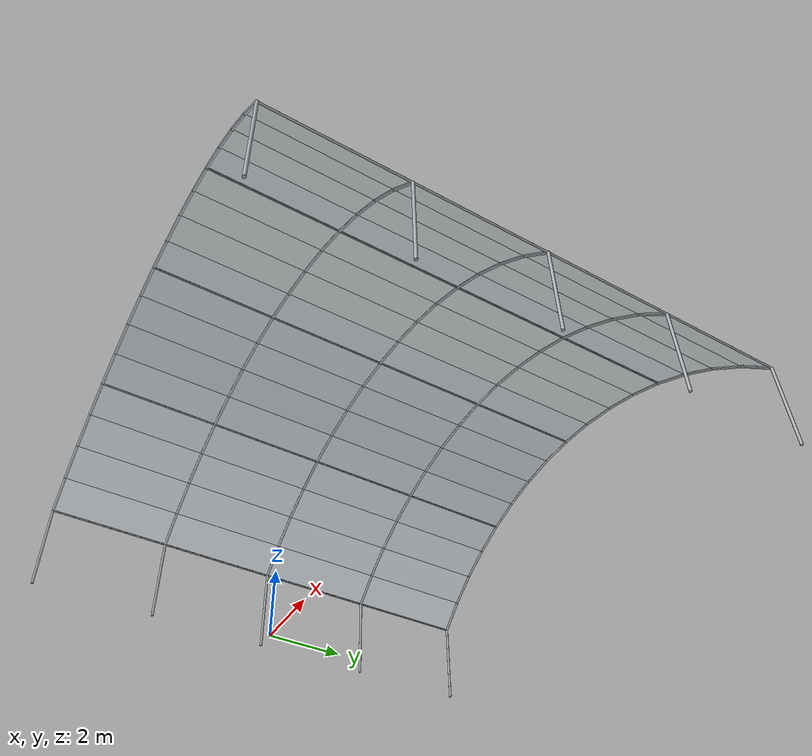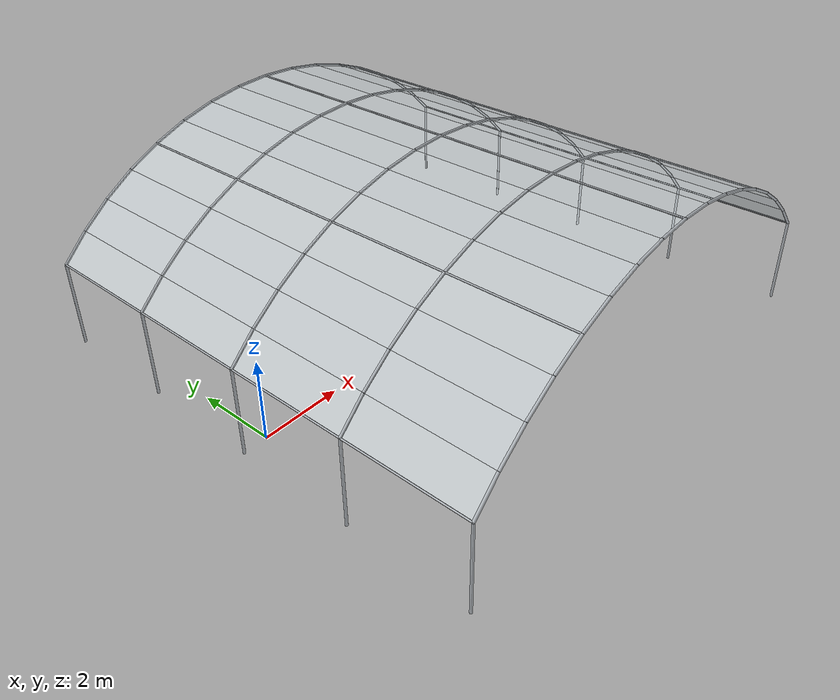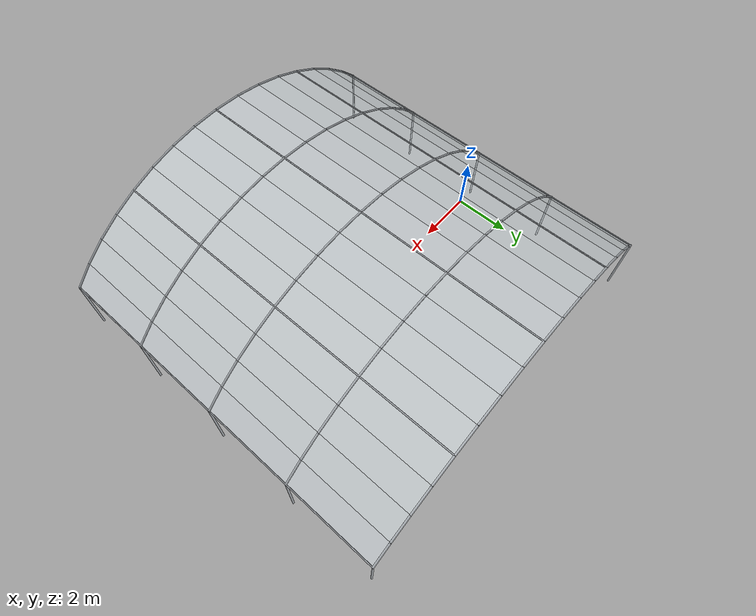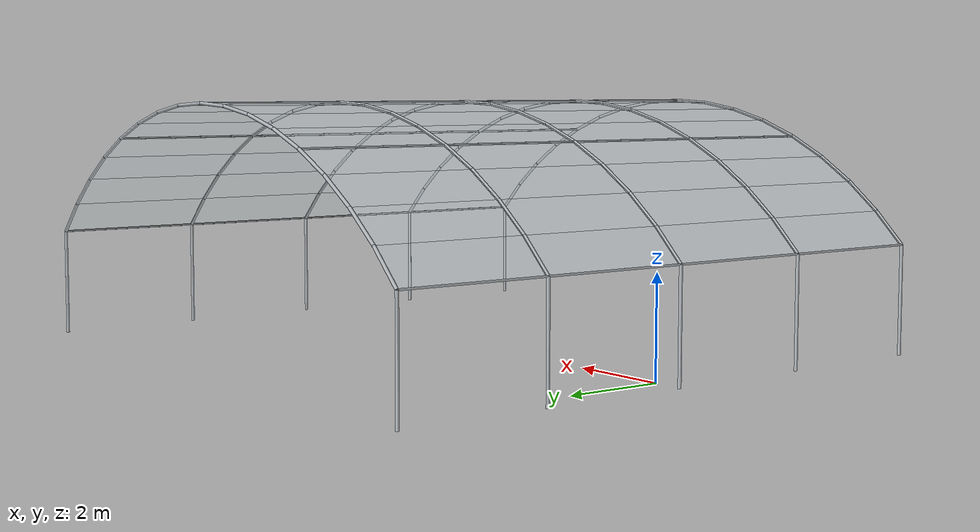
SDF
<?xml version="1.0"?>
<sdf version="1.6">
  <model name="polytunnel">
    <static>true</static>
    <link name="frame">
      <visual name="hoop_0">
        <pose>-0.6000 -6.0000 1.1000 0 0.00000 0</pose>
        <geometry><cylinder><radius>0.0320</radius><length>2.2000</length></cylinder></geometry>
        <material><ambient>0.42 0.44 0.46 1</ambient><diffuse>0.68 0.70 0.72 1</diffuse></material>
      </visual>
      <collision name="hoop_0_c">
        <pose>-0.6000 -6.0000 1.1000 0 0.00000 0</pose>
        <geometry><cylinder><radius>0.0320</radius><length>2.2000</length></cylinder></geometry>
      </collision>
      <visual name="hoop_1">
        <pose>-0.2826 -6.0000 2.5134 0 0.79173 0</pose>
        <geometry><cylinder><radius>0.0320</radius><length>0.8921</length></cylinder></geometry>
        <material><ambient>0.42 0.44 0.46 1</ambient><diffuse>0.68 0.70 0.72 1</diffuse></material>
      </visual>
      <collision name="hoop_1_c">
        <pose>-0.2826 -6.0000 2.5134 0 0.79173 0</pose>
        <geometry><cylinder><radius>0.0320</radius><length>0.8921</length></cylinder></geometry>
      </collision>
      <visual name="hoop_2">
        <pose>0.3830 -6.0000 3.1057 0 0.89561 0</pose>
        <geometry><cylinder><radius>0.0320</radius><length>0.8921</length></cylinder></geometry>
        <material><ambient>0.42 0.44 0.46 1</ambient><diffuse>0.68 0.70 0.72 1</diffuse></material>
      </visual>
      <collision name="hoop_2_c">
        <pose>0.3830 -6.0000 3.1057 0 0.89561 0</pose>
        <geometry><cylinder><radius>0.0320</radius><length>0.8921</length></cylinder></geometry>
      </collision>
      <visual name="hoop_3">
        <pose>1.1065 -6.0000 3.6257 0 0.99948 0</pose>
        <geometry><cylinder><radius>0.0320</radius><length>0.8921</length></cylinder></geometry>
        <material><ambient>0.42 0.44 0.46 1</ambient><diffuse>0.68 0.70 0.72 1</diffuse></material>
      </visual>
      <collision name="hoop_3_c">
        <pose>1.1065 -6.0000 3.6257 0 0.99948 0</pose>
        <geometry><cylinder><radius>0.0320</radius><length>0.8921</length></cylinder></geometry>
      </collision>
      <visual name="hoop_4">
        <pose>1.8799 -6.0000 4.0679 0 1.10336 0</pose>
        <geometry><cylinder><radius>0.0320</radius><length>0.8921</length></cylinder></geometry>
        <material><ambient>0.42 0.44 0.46 1</ambient><diffuse>0.68 0.70 0.72 1</diffuse></material>
      </visual>
      <collision name="hoop_4_c">
        <pose>1.8799 -6.0000 4.0679 0 1.10336 0</pose>
        <geometry><cylinder><radius>0.0320</radius><length>0.8921</length></cylinder></geometry>
      </collision>
      <visual name="hoop_5">
        <pose>2.6951 -6.0000 4.4275 0 1.20723 0</pose>
        <geometry><cylinder><radius>0.0320</radius><length>0.8921</length></cylinder></geometry>
        <material><ambient>0.42 0.44 0.46 1</ambient><diffuse>0.68 0.70 0.72 1</diffuse></material>
      </visual>
      <collision name="hoop_5_c">
        <pose>2.6951 -6.0000 4.4275 0 1.20723 0</pose>
        <geometry><cylinder><radius>0.0320</radius><length>0.8921</length></cylinder></geometry>
      </collision>
      <visual name="hoop_6">
        <pose>3.5431 -6.0000 4.7007 0 1.31111 0</pose>
        <geometry><cylinder><radius>0.0320</radius><length>0.8921</length></cylinder></geometry>
        <material><ambient>0.42 0.44 0.46 1</ambient><diffuse>0.68 0.70 0.72 1</diffuse></material>
      </visual>
      <collision name="hoop_6_c">
        <pose>3.5431 -6.0000 4.7007 0 1.31111 0</pose>
        <geometry><cylinder><radius>0.0320</radius><length>0.8921</length></cylinder></geometry>
      </collision>
      <visual name="hoop_7">
        <pose>4.4149 -6.0000 4.8845 0 1.41498 0</pose>
        <geometry><cylinder><radius>0.0320</radius><length>0.8921</length></cylinder></geometry>
        <material><ambient>0.42 0.44 0.46 1</ambient><diffuse>0.68 0.70 0.72 1</diffuse></material>
      </visual>
      <collision name="hoop_7_c">
        <pose>4.4149 -6.0000 4.8845 0 1.41498 0</pose>
        <geometry><cylinder><radius>0.0320</radius><length>0.8921</length></cylinder></geometry>
      </collision>
      <visual name="hoop_8">
        <pose>5.3010 -6.0000 4.9768 0 1.51886 0</pose>
        <geometry><cylinder><radius>0.0320</radius><length>0.8921</length></cylinder></geometry>
        <material><ambient>0.42 0.44 0.46 1</ambient><diffuse>0.68 0.70 0.72 1</diffuse></material>
      </visual>
      <collision name="hoop_8_c">
        <pose>5.3010 -6.0000 4.9768 0 1.51886 0</pose>
        <geometry><cylinder><radius>0.0320</radius><length>0.8921</length></cylinder></geometry>
      </collision>
      <visual name="hoop_9">
        <pose>6.1920 -6.0000 4.9768 0 1.62273 0</pose>
        <geometry><cylinder><radius>0.0320</radius><length>0.8921</length></cylinder></geometry>
        <material><ambient>0.42 0.44 0.46 1</ambient><diffuse>0.68 0.70 0.72 1</diffuse></material>
      </visual>
      <collision name="hoop_9_c">
        <pose>6.1920 -6.0000 4.9768 0 1.62273 0</pose>
        <geometry><cylinder><radius>0.0320</radius><length>0.8921</length></cylinder></geometry>
      </collision>
      <visual name="hoop_10">
        <pose>7.0781 -6.0000 4.8845 0 1.72661 0</pose>
        <geometry><cylinder><radius>0.0320</radius><length>0.8921</length></cylinder></geometry>
        <material><ambient>0.42 0.44 0.46 1</ambient><diffuse>0.68 0.70 0.72 1</diffuse></material>
      </visual>
      <collision name="hoop_10_c">
        <pose>7.0781 -6.0000 4.8845 0 1.72661 0</pose>
        <geometry><cylinder><radius>0.0320</radius><length>0.8921</length></cylinder></geometry>
      </collision>
      <visual name="hoop_11">
        <pose>7.9499 -6.0000 4.7007 0 1.83048 0</pose>
        <geometry><cylinder><radius>0.0320</radius><length>0.8921</length></cylinder></geometry>
        <material><ambient>0.42 0.44 0.46 1</ambient><diffuse>0.68 0.70 0.72 1</diffuse></material>
      </visual>
      <collision name="hoop_11_c">
        <pose>7.9499 -6.0000 4.7007 0 1.83048 0</pose>
        <geometry><cylinder><radius>0.0320</radius><length>0.8921</length></cylinder></geometry>
      </collision>
      <visual name="hoop_12">
        <pose>8.7979 -6.0000 4.4275 0 1.93436 0</pose>
        <geometry><cylinder><radius>0.0320</radius><length>0.8921</length></cylinder></geometry>
        <material><ambient>0.42 0.44 0.46 1</ambient><diffuse>0.68 0.70 0.72 1</diffuse></material>
      </visual>
      <collision name="hoop_12_c">
        <pose>8.7979 -6.0000 4.4275 0 1.93436 0</pose>
        <geometry><cylinder><radius>0.0320</radius><length>0.8921</length></cylinder></geometry>
      </collision>
      <visual name="hoop_13">
        <pose>9.6131 -6.0000 4.0679 0 2.03824 0</pose>
        <geometry><cylinder><radius>0.0320</radius><length>0.8921</length></cylinder></geometry>
        <material><ambient>0.42 0.44 0.46 1</ambient><diffuse>0.68 0.70 0.72 1</diffuse></material>
      </visual>
      <collision name="hoop_13_c">
        <pose>9.6131 -6.0000 4.0679 0 2.03824 0</pose>
        <geometry><cylinder><radius>0.0320</radius><length>0.8921</length></cylinder></geometry>
      </collision>
      <visual name="hoop_14">
        <pose>10.3865 -6.0000 3.6257 0 2.14211 0</pose>
        <geometry><cylinder><radius>0.0320</radius><length>0.8921</length></cylinder></geometry>
        <material><ambient>0.42 0.44 0.46 1</ambient><diffuse>0.68 0.70 0.72 1</diffuse></material>
      </visual>
      <collision name="hoop_14_c">
        <pose>10.3865 -6.0000 3.6257 0 2.14211 0</pose>
        <geometry><cylinder><radius>0.0320</radius><length>0.8921</length></cylinder></geometry>
      </collision>
      <visual name="hoop_15">
        <pose>11.1100 -6.0000 3.1057 0 2.24599 0</pose>
        <geometry><cylinder><radius>0.0320</radius><length>0.8921</length></cylinder></geometry>
        <material><ambient>0.42 0.44 0.46 1</ambient><diffuse>0.68 0.70 0.72 1</diffuse></material>
      </visual>
      <collision name="hoop_15_c">
        <pose>11.1100 -6.0000 3.1057 0 2.24599 0</pose>
        <geometry><cylinder><radius>0.0320</radius><length>0.8921</length></cylinder></geometry>
      </collision>
      <visual name="hoop_16">
        <pose>11.7756 -6.0000 2.5134 0 2.34986 0</pose>
        <geometry><cylinder><radius>0.0320</radius><length>0.8921</length></cylinder></geometry>
        <material><ambient>0.42 0.44 0.46 1</ambient><diffuse>0.68 0.70 0.72 1</diffuse></material>
      </visual>
      <collision name="hoop_16_c">
        <pose>11.7756 -6.0000 2.5134 0 2.34986 0</pose>
        <geometry><cylinder><radius>0.0320</radius><length>0.8921</length></cylinder></geometry>
      </collision>
      <visual name="hoop_17">
        <pose>12.0930 -6.0000 1.1000 0 3.14159 0</pose>
        <geometry><cylinder><radius>0.0320</radius><length>2.2000</length></cylinder></geometry>
        <material><ambient>0.42 0.44 0.46 1</ambient><diffuse>0.68 0.70 0.72 1</diffuse></material>
      </visual>
      <collision name="hoop_17_c">
        <pose>12.0930 -6.0000 1.1000 0 3.14159 0</pose>
        <geometry><cylinder><radius>0.0320</radius><length>2.2000</length></cylinder></geometry>
      </collision>
      <visual name="hoop_18">
        <pose>-0.6000 -3.0000 1.1000 0 0.00000 0</pose>
        <geometry><cylinder><radius>0.0320</radius><length>2.2000</length></cylinder></geometry>
        <material><ambient>0.42 0.44 0.46 1</ambient><diffuse>0.68 0.70 0.72 1</diffuse></material>
      </visual>
      <collision name="hoop_18_c">
        <pose>-0.6000 -3.0000 1.1000 0 0.00000 0</pose>
        <geometry><cylinder><radius>0.0320</radius><length>2.2000</length></cylinder></geometry>
      </collision>
      <visual name="hoop_19">
        <pose>-0.2826 -3.0000 2.5134 0 0.79173 0</pose>
        <geometry><cylinder><radius>0.0320</radius><length>0.8921</length></cylinder></geometry>
        <material><ambient>0.42 0.44 0.46 1</ambient><diffuse>0.68 0.70 0.72 1</diffuse></material>
      </visual>
      <collision name="hoop_19_c">
        <pose>-0.2826 -3.0000 2.5134 0 0.79173 0</pose>
        <geometry><cylinder><radius>0.0320</radius><length>0.8921</length></cylinder></geometry>
      </collision>
      <visual name="hoop_20">
        <pose>0.3830 -3.0000 3.1057 0 0.89561 0</pose>
        <geometry><cylinder><radius>0.0320</radius><length>0.8921</length></cylinder></geometry>
        <material><ambient>0.42 0.44 0.46 1</ambient><diffuse>0.68 0.70 0.72 1</diffuse></material>
      </visual>
      <collision name="hoop_20_c">
        <pose>0.3830 -3.0000 3.1057 0 0.89561 0</pose>
        <geometry><cylinder><radius>0.0320</radius><length>0.8921</length></cylinder></geometry>
      </collision>
      <visual name="hoop_21">
        <pose>1.1065 -3.0000 3.6257 0 0.99948 0</pose>
        <geometry><cylinder><radius>0.0320</radius><length>0.8921</length></cylinder></geometry>
        <material><ambient>0.42 0.44 0.46 1</ambient><diffuse>0.68 0.70 0.72 1</diffuse></material>
      </visual>
      <collision name="hoop_21_c">
        <pose>1.1065 -3.0000 3.6257 0 0.99948 0</pose>
        <geometry><cylinder><radius>0.0320</radius><length>0.8921</length></cylinder></geometry>
      </collision>
      <visual name="hoop_22">
        <pose>1.8799 -3.0000 4.0679 0 1.10336 0</pose>
        <geometry><cylinder><radius>0.0320</radius><length>0.8921</length></cylinder></geometry>
        <material><ambient>0.42 0.44 0.46 1</ambient><diffuse>0.68 0.70 0.72 1</diffuse></material>
      </visual>
      <collision name="hoop_22_c">
        <pose>1.8799 -3.0000 4.0679 0 1.10336 0</pose>
        <geometry><cylinder><radius>0.0320</radius><length>0.8921</length></cylinder></geometry>
      </collision>
      <visual name="hoop_23">
        <pose>2.6951 -3.0000 4.4275 0 1.20723 0</pose>
        <geometry><cylinder><radius>0.0320</radius><length>0.8921</length></cylinder></geometry>
        <material><ambient>0.42 0.44 0.46 1</ambient><diffuse>0.68 0.70 0.72 1</diffuse></material>
      </visual>
      <collision name="hoop_23_c">
        <pose>2.6951 -3.0000 4.4275 0 1.20723 0</pose>
        <geometry><cylinder><radius>0.0320</radius><length>0.8921</length></cylinder></geometry>
      </collision>
      <visual name="hoop_24">
        <pose>3.5431 -3.0000 4.7007 0 1.31111 0</pose>
        <geometry><cylinder><radius>0.0320</radius><length>0.8921</length></cylinder></geometry>
        <material><ambient>0.42 0.44 0.46 1</ambient><diffuse>0.68 0.70 0.72 1</diffuse></material>
      </visual>
      <collision name="hoop_24_c">
        <pose>3.5431 -3.0000 4.7007 0 1.31111 0</pose>
        <geometry><cylinder><radius>0.0320</radius><length>0.8921</length></cylinder></geometry>
      </collision>
      <visual name="hoop_25">
        <pose>4.4149 -3.0000 4.8845 0 1.41498 0</pose>
        <geometry><cylinder><radius>0.0320</radius><length>0.8921</length></cylinder></geometry>
        <material><ambient>0.42 0.44 0.46 1</ambient><diffuse>0.68 0.70 0.72 1</diffuse></material>
      </visual>
      <collision name="hoop_25_c">
        <pose>4.4149 -3.0000 4.8845 0 1.41498 0</pose>
        <geometry><cylinder><radius>0.0320</radius><length>0.8921</length></cylinder></geometry>
      </collision>
      <visual name="hoop_26">
        <pose>5.3010 -3.0000 4.9768 0 1.51886 0</pose>
        <geometry><cylinder><radius>0.0320</radius><length>0.8921</length></cylinder></geometry>
        <material><ambient>0.42 0.44 0.46 1</ambient><diffuse>0.68 0.70 0.72 1</diffuse></material>
      </visual>
      <collision name="hoop_26_c">
        <pose>5.3010 -3.0000 4.9768 0 1.51886 0</pose>
        <geometry><cylinder><radius>0.0320</radius><length>0.8921</length></cylinder></geometry>
      </collision>
      <visual name="hoop_27">
        <pose>6.1920 -3.0000 4.9768 0 1.62273 0</pose>
        <geometry><cylinder><radius>0.0320</radius><length>0.8921</length></cylinder></geometry>
        <material><ambient>0.42 0.44 0.46 1</ambient><diffuse>0.68 0.70 0.72 1</diffuse></material>
      </visual>
      <collision name="hoop_27_c">
        <pose>6.1920 -3.0000 4.9768 0 1.62273 0</pose>
        <geometry><cylinder><radius>0.0320</radius><length>0.8921</length></cylinder></geometry>
      </collision>
      <visual name="hoop_28">
        <pose>7.0781 -3.0000 4.8845 0 1.72661 0</pose>
        <geometry><cylinder><radius>0.0320</radius><length>0.8921</length></cylinder></geometry>
        <material><ambient>0.42 0.44 0.46 1</ambient><diffuse>0.68 0.70 0.72 1</diffuse></material>
      </visual>
      <collision name="hoop_28_c">
        <pose>7.0781 -3.0000 4.8845 0 1.72661 0</pose>
        <geometry><cylinder><radius>0.0320</radius><length>0.8921</length></cylinder></geometry>
      </collision>
      <visual name="hoop_29">
        <pose>7.9499 -3.0000 4.7007 0 1.83048 0</pose>
        <geometry><cylinder><radius>0.0320</radius><length>0.8921</length></cylinder></geometry>
        <material><ambient>0.42 0.44 0.46 1</ambient><diffuse>0.68 0.70 0.72 1</diffuse></material>
      </visual>
      <collision name="hoop_29_c">
        <pose>7.9499 -3.0000 4.7007 0 1.83048 0</pose>
        <geometry><cylinder><radius>0.0320</radius><length>0.8921</length></cylinder></geometry>
      </collision>
      <visual name="hoop_30">
        <pose>8.7979 -3.0000 4.4275 0 1.93436 0</pose>
        <geometry><cylinder><radius>0.0320</radius><length>0.8921</length></cylinder></geometry>
        <material><ambient>0.42 0.44 0.46 1</ambient><diffuse>0.68 0.70 0.72 1</diffuse></material>
      </visual>
      <collision name="hoop_30_c">
        <pose>8.7979 -3.0000 4.4275 0 1.93436 0</pose>
        <geometry><cylinder><radius>0.0320</radius><length>0.8921</length></cylinder></geometry>
      </collision>
      <visual name="hoop_31">
        <pose>9.6131 -3.0000 4.0679 0 2.03824 0</pose>
        <geometry><cylinder><radius>0.0320</radius><length>0.8921</length></cylinder></geometry>
        <material><ambient>0.42 0.44 0.46 1</ambient><diffuse>0.68 0.70 0.72 1</diffuse></material>
      </visual>
      <collision name="hoop_31_c">
        <pose>9.6131 -3.0000 4.0679 0 2.03824 0</pose>
        <geometry><cylinder><radius>0.0320</radius><length>0.8921</length></cylinder></geometry>
      </collision>
      <visual name="hoop_32">
        <pose>10.3865 -3.0000 3.6257 0 2.14211 0</pose>
        <geometry><cylinder><radius>0.0320</radius><length>0.8921</length></cylinder></geometry>
        <material><ambient>0.42 0.44 0.46 1</ambient><diffuse>0.68 0.70 0.72 1</diffuse></material>
      </visual>
      <collision name="hoop_32_c">
        <pose>10.3865 -3.0000 3.6257 0 2.14211 0</pose>
        <geometry><cylinder><radius>0.0320</radius><length>0.8921</length></cylinder></geometry>
      </collision>
      <visual name="hoop_33">
        <pose>11.1100 -3.0000 3.1057 0 2.24599 0</pose>
        <geometry><cylinder><radius>0.0320</radius><length>0.8921</length></cylinder></geometry>
        <material><ambient>0.42 0.44 0.46 1</ambient><diffuse>0.68 0.70 0.72 1</diffuse></material>
      </visual>
      <collision name="hoop_33_c">
        <pose>11.1100 -3.0000 3.1057 0 2.24599 0</pose>
        <geometry><cylinder><radius>0.0320</radius><length>0.8921</length></cylinder></geometry>
      </collision>
      <visual name="hoop_34">
        <pose>11.7756 -3.0000 2.5134 0 2.34986 0</pose>
        <geometry><cylinder><radius>0.0320</radius><length>0.8921</length></cylinder></geometry>
        <material><ambient>0.42 0.44 0.46 1</ambient><diffuse>0.68 0.70 0.72 1</diffuse></material>
      </visual>
      <collision name="hoop_34_c">
        <pose>11.7756 -3.0000 2.5134 0 2.34986 0</pose>
        <geometry><cylinder><radius>0.0320</radius><length>0.8921</length></cylinder></geometry>
      </collision>
      <visual name="hoop_35">
        <pose>12.0930 -3.0000 1.1000 0 3.14159 0</pose>
        <geometry><cylinder><radius>0.0320</radius><length>2.2000</length></cylinder></geometry>
        <material><ambient>0.42 0.44 0.46 1</ambient><diffuse>0.68 0.70 0.72 1</diffuse></material>
      </visual>
      <collision name="hoop_35_c">
        <pose>12.0930 -3.0000 1.1000 0 3.14159 0</pose>
        <geometry><cylinder><radius>0.0320</radius><length>2.2000</length></cylinder></geometry>
      </collision>
      <visual name="hoop_36">
        <pose>-0.6000 0.0000 1.1000 0 0.00000 0</pose>
        <geometry><cylinder><radius>0.0320</radius><length>2.2000</length></cylinder></geometry>
        <material><ambient>0.42 0.44 0.46 1</ambient><diffuse>0.68 0.70 0.72 1</diffuse></material>
      </visual>
      <collision name="hoop_36_c">
        <pose>-0.6000 0.0000 1.1000 0 0.00000 0</pose>
        <geometry><cylinder><radius>0.0320</radius><length>2.2000</length></cylinder></geometry>
      </collision>
      <visual name="hoop_37">
        <pose>-0.2826 0.0000 2.5134 0 0.79173 0</pose>
        <geometry><cylinder><radius>0.0320</radius><length>0.8921</length></cylinder></geometry>
        <material><ambient>0.42 0.44 0.46 1</ambient><diffuse>0.68 0.70 0.72 1</diffuse></material>
      </visual>
      <collision name="hoop_37_c">
        <pose>-0.2826 0.0000 2.5134 0 0.79173 0</pose>
        <geometry><cylinder><radius>0.0320</radius><length>0.8921</length></cylinder></geometry>
      </collision>
      <visual name="hoop_38">
        <pose>0.3830 0.0000 3.1057 0 0.89561 0</pose>
        <geometry><cylinder><radius>0.0320</radius><length>0.8921</length></cylinder></geometry>
        <material><ambient>0.42 0.44 0.46 1</ambient><diffuse>0.68 0.70 0.72 1</diffuse></material>
      </visual>
      <collision name="hoop_38_c">
        <pose>0.3830 0.0000 3.1057 0 0.89561 0</pose>
        <geometry><cylinder><radius>0.0320</radius><length>0.8921</length></cylinder></geometry>
      </collision>
      <visual name="hoop_39">
        <pose>1.1065 0.0000 3.6257 0 0.99948 0</pose>
        <geometry><cylinder><radius>0.0320</radius><length>0.8921</length></cylinder></geometry>
        <material><ambient>0.42 0.44 0.46 1</ambient><diffuse>0.68 0.70 0.72 1</diffuse></material>
      </visual>
      <collision name="hoop_39_c">
        <pose>1.1065 0.0000 3.6257 0 0.99948 0</pose>
        <geometry><cylinder><radius>0.0320</radius><length>0.8921</length></cylinder></geometry>
      </collision>
      <visual name="hoop_40">
        <pose>1.8799 0.0000 4.0679 0 1.10336 0</pose>
        <geometry><cylinder><radius>0.0320</radius><length>0.8921</length></cylinder></geometry>
        <material><ambient>0.42 0.44 0.46 1</ambient><diffuse>0.68 0.70 0.72 1</diffuse></material>
      </visual>
      <collision name="hoop_40_c">
        <pose>1.8799 0.0000 4.0679 0 1.10336 0</pose>
        <geometry><cylinder><radius>0.0320</radius><length>0.8921</length></cylinder></geometry>
      </collision>
      <visual name="hoop_41">
        <pose>2.6951 0.0000 4.4275 0 1.20723 0</pose>
        <geometry><cylinder><radius>0.0320</radius><length>0.8921</length></cylinder></geometry>
        <material><ambient>0.42 0.44 0.46 1</ambient><diffuse>0.68 0.70 0.72 1</diffuse></material>
      </visual>
      <collision name="hoop_41_c">
        <pose>2.6951 0.0000 4.4275 0 1.20723 0</pose>
        <geometry><cylinder><radius>0.0320</radius><length>0.8921</length></cylinder></geometry>
      </collision>
      <visual name="hoop_42">
        <pose>3.5431 0.0000 4.7007 0 1.31111 0</pose>
        <geometry><cylinder><radius>0.0320</radius><length>0.8921</length></cylinder></geometry>
        <material><ambient>0.42 0.44 0.46 1</ambient><diffuse>0.68 0.70 0.72 1</diffuse></material>
      </visual>
      <collision name="hoop_42_c">
        <pose>3.5431 0.0000 4.7007 0 1.31111 0</pose>
        <geometry><cylinder><radius>0.0320</radius><length>0.8921</length></cylinder></geometry>
      </collision>
      <visual name="hoop_43">
        <pose>4.4149 0.0000 4.8845 0 1.41498 0</pose>
        <geometry><cylinder><radius>0.0320</radius><length>0.8921</length></cylinder></geometry>
        <material><ambient>0.42 0.44 0.46 1</ambient><diffuse>0.68 0.70 0.72 1</diffuse></material>
      </visual>
      <collision name="hoop_43_c">
        <pose>4.4149 0.0000 4.8845 0 1.41498 0</pose>
        <geometry><cylinder><radius>0.0320</radius><length>0.8921</length></cylinder></geometry>
      </collision>
      <visual name="hoop_44">
        <pose>5.3010 0.0000 4.9768 0 1.51886 0</pose>
        <geometry><cylinder><radius>0.0320</radius><length>0.8921</length></cylinder></geometry>
        <material><ambient>0.42 0.44 0.46 1</ambient><diffuse>0.68 0.70 0.72 1</diffuse></material>
      </visual>
      <collision name="hoop_44_c">
        <pose>5.3010 0.0000 4.9768 0 1.51886 0</pose>
        <geometry><cylinder><radius>0.0320</radius><length>0.8921</length></cylinder></geometry>
      </collision>
      <visual name="hoop_45">
        <pose>6.1920 0.0000 4.9768 0 1.62273 0</pose>
        <geometry><cylinder><radius>0.0320</radius><length>0.8921</length></cylinder></geometry>
        <material><ambient>0.42 0.44 0.46 1</ambient><diffuse>0.68 0.70 0.72 1</diffuse></material>
      </visual>
      <collision name="hoop_45_c">
        <pose>6.1920 0.0000 4.9768 0 1.62273 0</pose>
        <geometry><cylinder><radius>0.0320</radius><length>0.8921</length></cylinder></geometry>
      </collision>
      <visual name="hoop_46">
        <pose>7.0781 0.0000 4.8845 0 1.72661 0</pose>
        <geometry><cylinder><radius>0.0320</radius><length>0.8921</length></cylinder></geometry>
        <material><ambient>0.42 0.44 0.46 1</ambient><diffuse>0.68 0.70 0.72 1</diffuse></material>
      </visual>
      <collision name="hoop_46_c">
        <pose>7.0781 0.0000 4.8845 0 1.72661 0</pose>
        <geometry><cylinder><radius>0.0320</radius><length>0.8921</length></cylinder></geometry>
      </collision>
      <visual name="hoop_47">
        <pose>7.9499 0.0000 4.7007 0 1.83048 0</pose>
        <geometry><cylinder><radius>0.0320</radius><length>0.8921</length></cylinder></geometry>
        <material><ambient>0.42 0.44 0.46 1</ambient><diffuse>0.68 0.70 0.72 1</diffuse></material>
      </visual>
      <collision name="hoop_47_c">
        <pose>7.9499 0.0000 4.7007 0 1.83048 0</pose>
        <geometry><cylinder><radius>0.0320</radius><length>0.8921</length></cylinder></geometry>
      </collision>
      <visual name="hoop_48">
        <pose>8.7979 0.0000 4.4275 0 1.93436 0</pose>
        <geometry><cylinder><radius>0.0320</radius><length>0.8921</length></cylinder></geometry>
        <material><ambient>0.42 0.44 0.46 1</ambient><diffuse>0.68 0.70 0.72 1</diffuse></material>
      </visual>
      <collision name="hoop_48_c">
        <pose>8.7979 0.0000 4.4275 0 1.93436 0</pose>
        <geometry><cylinder><radius>0.0320</radius><length>0.8921</length></cylinder></geometry>
      </collision>
      <visual name="hoop_49">
        <pose>9.6131 0.0000 4.0679 0 2.03824 0</pose>
        <geometry><cylinder><radius>0.0320</radius><length>0.8921</length></cylinder></geometry>
        <material><ambient>0.42 0.44 0.46 1</ambient><diffuse>0.68 0.70 0.72 1</diffuse></material>
      </visual>
      <collision name="hoop_49_c">
        <pose>9.6131 0.0000 4.0679 0 2.03824 0</pose>
        <geometry><cylinder><radius>0.0320</radius><length>0.8921</length></cylinder></geometry>
      </collision>
      <visual name="hoop_50">
        <pose>10.3865 0.0000 3.6257 0 2.14211 0</pose>
        <geometry><cylinder><radius>0.0320</radius><length>0.8921</length></cylinder></geometry>
        <material><ambient>0.42 0.44 0.46 1</ambient><diffuse>0.68 0.70 0.72 1</diffuse></material>
      </visual>
      <collision name="hoop_50_c">
        <pose>10.3865 0.0000 3.6257 0 2.14211 0</pose>
        <geometry><cylinder><radius>0.0320</radius><length>0.8921</length></cylinder></geometry>
      </collision>
      <visual name="hoop_51">
        <pose>11.1100 0.0000 3.1057 0 2.24599 0</pose>
        <geometry><cylinder><radius>0.0320</radius><length>0.8921</length></cylinder></geometry>
        <material><ambient>0.42 0.44 0.46 1</ambient><diffuse>0.68 0.70 0.72 1</diffuse></material>
      </visual>
      <collision name="hoop_51_c">
        <pose>11.1100 0.0000 3.1057 0 2.24599 0</pose>
        <geometry><cylinder><radius>0.0320</radius><length>0.8921</length></cylinder></geometry>
      </collision>
      <visual name="hoop_52">
        <pose>11.7756 0.0000 2.5134 0 2.34986 0</pose>
        <geometry><cylinder><radius>0.0320</radius><length>0.8921</length></cylinder></geometry>
        <material><ambient>0.42 0.44 0.46 1</ambient><diffuse>0.68 0.70 0.72 1</diffuse></material>
      </visual>
      <collision name="hoop_52_c">
        <pose>11.7756 0.0000 2.5134 0 2.34986 0</pose>
        <geometry><cylinder><radius>0.0320</radius><length>0.8921</length></cylinder></geometry>
      </collision>
      <visual name="hoop_53">
        <pose>12.0930 0.0000 1.1000 0 3.14159 0</pose>
        <geometry><cylinder><radius>0.0320</radius><length>2.2000</length></cylinder></geometry>
        <material><ambient>0.42 0.44 0.46 1</ambient><diffuse>0.68 0.70 0.72 1</diffuse></material>
      </visual>
      <collision name="hoop_53_c">
        <pose>12.0930 0.0000 1.1000 0 3.14159 0</pose>
        <geometry><cylinder><radius>0.0320</radius><length>2.2000</length></cylinder></geometry>
      </collision>
      <visual name="hoop_54">
        <pose>-0.6000 3.0000 1.1000 0 0.00000 0</pose>
        <geometry><cylinder><radius>0.0320</radius><length>2.2000</length></cylinder></geometry>
        <material><ambient>0.42 0.44 0.46 1</ambient><diffuse>0.68 0.70 0.72 1</diffuse></material>
      </visual>
      <collision name="hoop_54_c">
        <pose>-0.6000 3.0000 1.1000 0 0.00000 0</pose>
        <geometry><cylinder><radius>0.0320</radius><length>2.2000</length></cylinder></geometry>
      </collision>
      <visual name="hoop_55">
        <pose>-0.2826 3.0000 2.5134 0 0.79173 0</pose>
        <geometry><cylinder><radius>0.0320</radius><length>0.8921</length></cylinder></geometry>
        <material><ambient>0.42 0.44 0.46 1</ambient><diffuse>0.68 0.70 0.72 1</diffuse></material>
      </visual>
      <collision name="hoop_55_c">
        <pose>-0.2826 3.0000 2.5134 0 0.79173 0</pose>
        <geometry><cylinder><radius>0.0320</radius><length>0.8921</length></cylinder></geometry>
      </collision>
      <visual name="hoop_56">
        <pose>0.3830 3.0000 3.1057 0 0.89561 0</pose>
        <geometry><cylinder><radius>0.0320</radius><length>0.8921</length></cylinder></geometry>
        <material><ambient>0.42 0.44 0.46 1</ambient><diffuse>0.68 0.70 0.72 1</diffuse></material>
      </visual>
      <collision name="hoop_56_c">
        <pose>0.3830 3.0000 3.1057 0 0.89561 0</pose>
        <geometry><cylinder><radius>0.0320</radius><length>0.8921</length></cylinder></geometry>
      </collision>
      <visual name="hoop_57">
        <pose>1.1065 3.0000 3.6257 0 0.99948 0</pose>
        <geometry><cylinder><radius>0.0320</radius><length>0.8921</length></cylinder></geometry>
        <material><ambient>0.42 0.44 0.46 1</ambient><diffuse>0.68 0.70 0.72 1</diffuse></material>
      </visual>
      <collision name="hoop_57_c">
        <pose>1.1065 3.0000 3.6257 0 0.99948 0</pose>
        <geometry><cylinder><radius>0.0320</radius><length>0.8921</length></cylinder></geometry>
      </collision>
      <visual name="hoop_58">
        <pose>1.8799 3.0000 4.0679 0 1.10336 0</pose>
        <geometry><cylinder><radius>0.0320</radius><length>0.8921</length></cylinder></geometry>
        <material><ambient>0.42 0.44 0.46 1</ambient><diffuse>0.68 0.70 0.72 1</diffuse></material>
      </visual>
      <collision name="hoop_58_c">
        <pose>1.8799 3.0000 4.0679 0 1.10336 0</pose>
        <geometry><cylinder><radius>0.0320</radius><length>0.8921</length></cylinder></geometry>
      </collision>
      <visual name="hoop_59">
        <pose>2.6951 3.0000 4.4275 0 1.20723 0</pose>
        <geometry><cylinder><radius>0.0320</radius><length>0.8921</length></cylinder></geometry>
        <material><ambient>0.42 0.44 0.46 1</ambient><diffuse>0.68 0.70 0.72 1</diffuse></material>
      </visual>
      <collision name="hoop_59_c">
        <pose>2.6951 3.0000 4.4275 0 1.20723 0</pose>
        <geometry><cylinder><radius>0.0320</radius><length>0.8921</length></cylinder></geometry>
      </collision>
      <visual name="hoop_60">
        <pose>3.5431 3.0000 4.7007 0 1.31111 0</pose>
        <geometry><cylinder><radius>0.0320</radius><length>0.8921</length></cylinder></geometry>
        <material><ambient>0.42 0.44 0.46 1</ambient><diffuse>0.68 0.70 0.72 1</diffuse></material>
      </visual>
      <collision name="hoop_60_c">
        <pose>3.5431 3.0000 4.7007 0 1.31111 0</pose>
        <geometry><cylinder><radius>0.0320</radius><length>0.8921</length></cylinder></geometry>
      </collision>
      <visual name="hoop_61">
        <pose>4.4149 3.0000 4.8845 0 1.41498 0</pose>
        <geometry><cylinder><radius>0.0320</radius><length>0.8921</length></cylinder></geometry>
        <material><ambient>0.42 0.44 0.46 1</ambient><diffuse>0.68 0.70 0.72 1</diffuse></material>
      </visual>
      <collision name="hoop_61_c">
        <pose>4.4149 3.0000 4.8845 0 1.41498 0</pose>
        <geometry><cylinder><radius>0.0320</radius><length>0.8921</length></cylinder></geometry>
      </collision>
      <visual name="hoop_62">
        <pose>5.3010 3.0000 4.9768 0 1.51886 0</pose>
        <geometry><cylinder><radius>0.0320</radius><length>0.8921</length></cylinder></geometry>
        <material><ambient>0.42 0.44 0.46 1</ambient><diffuse>0.68 0.70 0.72 1</diffuse></material>
      </visual>
      <collision name="hoop_62_c">
        <pose>5.3010 3.0000 4.9768 0 1.51886 0</pose>
        <geometry><cylinder><radius>0.0320</radius><length>0.8921</length></cylinder></geometry>
      </collision>
      <visual name="hoop_63">
        <pose>6.1920 3.0000 4.9768 0 1.62273 0</pose>
        <geometry><cylinder><radius>0.0320</radius><length>0.8921</length></cylinder></geometry>
        <material><ambient>0.42 0.44 0.46 1</ambient><diffuse>0.68 0.70 0.72 1</diffuse></material>
      </visual>
      <collision name="hoop_63_c">
        <pose>6.1920 3.0000 4.9768 0 1.62273 0</pose>
        <geometry><cylinder><radius>0.0320</radius><length>0.8921</length></cylinder></geometry>
      </collision>
      <visual name="hoop_64">
        <pose>7.0781 3.0000 4.8845 0 1.72661 0</pose>
        <geometry><cylinder><radius>0.0320</radius><length>0.8921</length></cylinder></geometry>
        <material><ambient>0.42 0.44 0.46 1</ambient><diffuse>0.68 0.70 0.72 1</diffuse></material>
      </visual>
      <collision name="hoop_64_c">
        <pose>7.0781 3.0000 4.8845 0 1.72661 0</pose>
        <geometry><cylinder><radius>0.0320</radius><length>0.8921</length></cylinder></geometry>
      </collision>
      <visual name="hoop_65">
        <pose>7.9499 3.0000 4.7007 0 1.83048 0</pose>
        <geometry><cylinder><radius>0.0320</radius><length>0.8921</length></cylinder></geometry>
        <material><ambient>0.42 0.44 0.46 1</ambient><diffuse>0.68 0.70 0.72 1</diffuse></material>
      </visual>
      <collision name="hoop_65_c">
        <pose>7.9499 3.0000 4.7007 0 1.83048 0</pose>
        <geometry><cylinder><radius>0.0320</radius><length>0.8921</length></cylinder></geometry>
      </collision>
      <visual name="hoop_66">
        <pose>8.7979 3.0000 4.4275 0 1.93436 0</pose>
        <geometry><cylinder><radius>0.0320</radius><length>0.8921</length></cylinder></geometry>
        <material><ambient>0.42 0.44 0.46 1</ambient><diffuse>0.68 0.70 0.72 1</diffuse></material>
      </visual>
      <collision name="hoop_66_c">
        <pose>8.7979 3.0000 4.4275 0 1.93436 0</pose>
        <geometry><cylinder><radius>0.0320</radius><length>0.8921</length></cylinder></geometry>
      </collision>
      <visual name="hoop_67">
        <pose>9.6131 3.0000 4.0679 0 2.03824 0</pose>
        <geometry><cylinder><radius>0.0320</radius><length>0.8921</length></cylinder></geometry>
        <material><ambient>0.42 0.44 0.46 1</ambient><diffuse>0.68 0.70 0.72 1</diffuse></material>
      </visual>
      <collision name="hoop_67_c">
        <pose>9.6131 3.0000 4.0679 0 2.03824 0</pose>
        <geometry><cylinder><radius>0.0320</radius><length>0.8921</length></cylinder></geometry>
      </collision>
      <visual name="hoop_68">
        <pose>10.3865 3.0000 3.6257 0 2.14211 0</pose>
        <geometry><cylinder><radius>0.0320</radius><length>0.8921</length></cylinder></geometry>
        <material><ambient>0.42 0.44 0.46 1</ambient><diffuse>0.68 0.70 0.72 1</diffuse></material>
      </visual>
      <collision name="hoop_68_c">
        <pose>10.3865 3.0000 3.6257 0 2.14211 0</pose>
        <geometry><cylinder><radius>0.0320</radius><length>0.8921</length></cylinder></geometry>
      </collision>
      <visual name="hoop_69">
        <pose>11.1100 3.0000 3.1057 0 2.24599 0</pose>
        <geometry><cylinder><radius>0.0320</radius><length>0.8921</length></cylinder></geometry>
        <material><ambient>0.42 0.44 0.46 1</ambient><diffuse>0.68 0.70 0.72 1</diffuse></material>
      </visual>
      <collision name="hoop_69_c">
        <pose>11.1100 3.0000 3.1057 0 2.24599 0</pose>
        <geometry><cylinder><radius>0.0320</radius><length>0.8921</length></cylinder></geometry>
      </collision>
      <visual name="hoop_70">
        <pose>11.7756 3.0000 2.5134 0 2.34986 0</pose>
        <geometry><cylinder><radius>0.0320</radius><length>0.8921</length></cylinder></geometry>
        <material><ambient>0.42 0.44 0.46 1</ambient><diffuse>0.68 0.70 0.72 1</diffuse></material>
      </visual>
      <collision name="hoop_70_c">
        <pose>11.7756 3.0000 2.5134 0 2.34986 0</pose>
        <geometry><cylinder><radius>0.0320</radius><length>0.8921</length></cylinder></geometry>
      </collision>
      <visual name="hoop_71">
        <pose>12.0930 3.0000 1.1000 0 3.14159 0</pose>
        <geometry><cylinder><radius>0.0320</radius><length>2.2000</length></cylinder></geometry>
        <material><ambient>0.42 0.44 0.46 1</ambient><diffuse>0.68 0.70 0.72 1</diffuse></material>
      </visual>
      <collision name="hoop_71_c">
        <pose>12.0930 3.0000 1.1000 0 3.14159 0</pose>
        <geometry><cylinder><radius>0.0320</radius><length>2.2000</length></cylinder></geometry>
      </collision>
      <visual name="hoop_72">
        <pose>-0.6000 6.0000 1.1000 0 0.00000 0</pose>
        <geometry><cylinder><radius>0.0320</radius><length>2.2000</length></cylinder></geometry>
        <material><ambient>0.42 0.44 0.46 1</ambient><diffuse>0.68 0.70 0.72 1</diffuse></material>
      </visual>
      <collision name="hoop_72_c">
        <pose>-0.6000 6.0000 1.1000 0 0.00000 0</pose>
        <geometry><cylinder><radius>0.0320</radius><length>2.2000</length></cylinder></geometry>
      </collision>
      <visual name="hoop_73">
        <pose>-0.2826 6.0000 2.5134 0 0.79173 0</pose>
        <geometry><cylinder><radius>0.0320</radius><length>0.8921</length></cylinder></geometry>
        <material><ambient>0.42 0.44 0.46 1</ambient><diffuse>0.68 0.70 0.72 1</diffuse></material>
      </visual>
      <collision name="hoop_73_c">
        <pose>-0.2826 6.0000 2.5134 0 0.79173 0</pose>
        <geometry><cylinder><radius>0.0320</radius><length>0.8921</length></cylinder></geometry>
      </collision>
      <visual name="hoop_74">
        <pose>0.3830 6.0000 3.1057 0 0.89561 0</pose>
        <geometry><cylinder><radius>0.0320</radius><length>0.8921</length></cylinder></geometry>
        <material><ambient>0.42 0.44 0.46 1</ambient><diffuse>0.68 0.70 0.72 1</diffuse></material>
      </visual>
      <collision name="hoop_74_c">
        <pose>0.3830 6.0000 3.1057 0 0.89561 0</pose>
        <geometry><cylinder><radius>0.0320</radius><length>0.8921</length></cylinder></geometry>
      </collision>
      <visual name="hoop_75">
        <pose>1.1065 6.0000 3.6257 0 0.99948 0</pose>
        <geometry><cylinder><radius>0.0320</radius><length>0.8921</length></cylinder></geometry>
        <material><ambient>0.42 0.44 0.46 1</ambient><diffuse>0.68 0.70 0.72 1</diffuse></material>
      </visual>
      <collision name="hoop_75_c">
        <pose>1.1065 6.0000 3.6257 0 0.99948 0</pose>
        <geometry><cylinder><radius>0.0320</radius><length>0.8921</length></cylinder></geometry>
      </collision>
      <visual name="hoop_76">
        <pose>1.8799 6.0000 4.0679 0 1.10336 0</pose>
        <geometry><cylinder><radius>0.0320</radius><length>0.8921</length></cylinder></geometry>
        <material><ambient>0.42 0.44 0.46 1</ambient><diffuse>0.68 0.70 0.72 1</diffuse></material>
      </visual>
      <collision name="hoop_76_c">
        <pose>1.8799 6.0000 4.0679 0 1.10336 0</pose>
        <geometry><cylinder><radius>0.0320</radius><length>0.8921</length></cylinder></geometry>
      </collision>
      <visual name="hoop_77">
        <pose>2.6951 6.0000 4.4275 0 1.20723 0</pose>
        <geometry><cylinder><radius>0.0320</radius><length>0.8921</length></cylinder></geometry>
        <material><ambient>0.42 0.44 0.46 1</ambient><diffuse>0.68 0.70 0.72 1</diffuse></material>
      </visual>
      <collision name="hoop_77_c">
        <pose>2.6951 6.0000 4.4275 0 1.20723 0</pose>
        <geometry><cylinder><radius>0.0320</radius><length>0.8921</length></cylinder></geometry>
      </collision>
      <visual name="hoop_78">
        <pose>3.5431 6.0000 4.7007 0 1.31111 0</pose>
        <geometry><cylinder><radius>0.0320</radius><length>0.8921</length></cylinder></geometry>
        <material><ambient>0.42 0.44 0.46 1</ambient><diffuse>0.68 0.70 0.72 1</diffuse></material>
      </visual>
      <collision name="hoop_78_c">
        <pose>3.5431 6.0000 4.7007 0 1.31111 0</pose>
        <geometry><cylinder><radius>0.0320</radius><length>0.8921</length></cylinder></geometry>
      </collision>
      <visual name="hoop_79">
        <pose>4.4149 6.0000 4.8845 0 1.41498 0</pose>
        <geometry><cylinder><radius>0.0320</radius><length>0.8921</length></cylinder></geometry>
        <material><ambient>0.42 0.44 0.46 1</ambient><diffuse>0.68 0.70 0.72 1</diffuse></material>
      </visual>
      <collision name="hoop_79_c">
        <pose>4.4149 6.0000 4.8845 0 1.41498 0</pose>
        <geometry><cylinder><radius>0.0320</radius><length>0.8921</length></cylinder></geometry>
      </collision>
      <visual name="hoop_80">
        <pose>5.3010 6.0000 4.9768 0 1.51886 0</pose>
        <geometry><cylinder><radius>0.0320</radius><length>0.8921</length></cylinder></geometry>
        <material><ambient>0.42 0.44 0.46 1</ambient><diffuse>0.68 0.70 0.72 1</diffuse></material>
      </visual>
      <collision name="hoop_80_c">
        <pose>5.3010 6.0000 4.9768 0 1.51886 0</pose>
        <geometry><cylinder><radius>0.0320</radius><length>0.8921</length></cylinder></geometry>
      </collision>
      <visual name="hoop_81">
        <pose>6.1920 6.0000 4.9768 0 1.62273 0</pose>
        <geometry><cylinder><radius>0.0320</radius><length>0.8921</length></cylinder></geometry>
        <material><ambient>0.42 0.44 0.46 1</ambient><diffuse>0.68 0.70 0.72 1</diffuse></material>
      </visual>
      <collision name="hoop_81_c">
        <pose>6.1920 6.0000 4.9768 0 1.62273 0</pose>
        <geometry><cylinder><radius>0.0320</radius><length>0.8921</length></cylinder></geometry>
      </collision>
      <visual name="hoop_82">
        <pose>7.0781 6.0000 4.8845 0 1.72661 0</pose>
        <geometry><cylinder><radius>0.0320</radius><length>0.8921</length></cylinder></geometry>
        <material><ambient>0.42 0.44 0.46 1</ambient><diffuse>0.68 0.70 0.72 1</diffuse></material>
      </visual>
      <collision name="hoop_82_c">
        <pose>7.0781 6.0000 4.8845 0 1.72661 0</pose>
        <geometry><cylinder><radius>0.0320</radius><length>0.8921</length></cylinder></geometry>
      </collision>
      <visual name="hoop_83">
        <pose>7.9499 6.0000 4.7007 0 1.83048 0</pose>
        <geometry><cylinder><radius>0.0320</radius><length>0.8921</length></cylinder></geometry>
        <material><ambient>0.42 0.44 0.46 1</ambient><diffuse>0.68 0.70 0.72 1</diffuse></material>
      </visual>
      <collision name="hoop_83_c">
        <pose>7.9499 6.0000 4.7007 0 1.83048 0</pose>
        <geometry><cylinder><radius>0.0320</radius><length>0.8921</length></cylinder></geometry>
      </collision>
      <visual name="hoop_84">
        <pose>8.7979 6.0000 4.4275 0 1.93436 0</pose>
        <geometry><cylinder><radius>0.0320</radius><length>0.8921</length></cylinder></geometry>
        <material><ambient>0.42 0.44 0.46 1</ambient><diffuse>0.68 0.70 0.72 1</diffuse></material>
      </visual>
      <collision name="hoop_84_c">
        <pose>8.7979 6.0000 4.4275 0 1.93436 0</pose>
        <geometry><cylinder><radius>0.0320</radius><length>0.8921</length></cylinder></geometry>
      </collision>
      <visual name="hoop_85">
        <pose>9.6131 6.0000 4.0679 0 2.03824 0</pose>
        <geometry><cylinder><radius>0.0320</radius><length>0.8921</length></cylinder></geometry>
        <material><ambient>0.42 0.44 0.46 1</ambient><diffuse>0.68 0.70 0.72 1</diffuse></material>
      </visual>
      <collision name="hoop_85_c">
        <pose>9.6131 6.0000 4.0679 0 2.03824 0</pose>
        <geometry><cylinder><radius>0.0320</radius><length>0.8921</length></cylinder></geometry>
      </collision>
      <visual name="hoop_86">
        <pose>10.3865 6.0000 3.6257 0 2.14211 0</pose>
        <geometry><cylinder><radius>0.0320</radius><length>0.8921</length></cylinder></geometry>
        <material><ambient>0.42 0.44 0.46 1</ambient><diffuse>0.68 0.70 0.72 1</diffuse></material>
      </visual>
      <collision name="hoop_86_c">
        <pose>10.3865 6.0000 3.6257 0 2.14211 0</pose>
        <geometry><cylinder><radius>0.0320</radius><length>0.8921</length></cylinder></geometry>
      </collision>
      <visual name="hoop_87">
        <pose>11.1100 6.0000 3.1057 0 2.24599 0</pose>
        <geometry><cylinder><radius>0.0320</radius><length>0.8921</length></cylinder></geometry>
        <material><ambient>0.42 0.44 0.46 1</ambient><diffuse>0.68 0.70 0.72 1</diffuse></material>
      </visual>
      <collision name="hoop_87_c">
        <pose>11.1100 6.0000 3.1057 0 2.24599 0</pose>
        <geometry><cylinder><radius>0.0320</radius><length>0.8921</length></cylinder></geometry>
      </collision>
      <visual name="hoop_88">
        <pose>11.7756 6.0000 2.5134 0 2.34986 0</pose>
        <geometry><cylinder><radius>0.0320</radius><length>0.8921</length></cylinder></geometry>
        <material><ambient>0.42 0.44 0.46 1</ambient><diffuse>0.68 0.70 0.72 1</diffuse></material>
      </visual>
      <collision name="hoop_88_c">
        <pose>11.7756 6.0000 2.5134 0 2.34986 0</pose>
        <geometry><cylinder><radius>0.0320</radius><length>0.8921</length></cylinder></geometry>
      </collision>
      <visual name="hoop_89">
        <pose>12.0930 6.0000 1.1000 0 3.14159 0</pose>
        <geometry><cylinder><radius>0.0320</radius><length>2.2000</length></cylinder></geometry>
        <material><ambient>0.42 0.44 0.46 1</ambient><diffuse>0.68 0.70 0.72 1</diffuse></material>
      </visual>
      <collision name="hoop_89_c">
        <pose>12.0930 6.0000 1.1000 0 3.14159 0</pose>
        <geometry><cylinder><radius>0.0320</radius><length>2.2000</length></cylinder></geometry>
      </collision>
      <visual name="purlin_0">
        <pose>-0.6000 0.0000 2.2000 1.5708 0 0</pose>
        <geometry><cylinder><radius>0.020</radius><length>12.000</length></cylinder></geometry>
        <material><ambient>0.42 0.44 0.46 1</ambient><diffuse>0.68 0.70 0.72 1</diffuse></material>
      </visual>
      <collision name="purlin_0_c">
        <pose>-0.6000 0.0000 2.2000 1.5708 0 0</pose>
        <geometry><cylinder><radius>0.020</radius><length>12.000</length></cylinder></geometry>
      </collision>
      <visual name="purlin_4">
        <pose>2.2781 0.0000 4.2689 1.5708 0 0</pose>
        <geometry><cylinder><radius>0.020</radius><length>12.000</length></cylinder></geometry>
        <material><ambient>0.42 0.44 0.46 1</ambient><diffuse>0.68 0.70 0.72 1</diffuse></material>
      </visual>
      <collision name="purlin_4_c">
        <pose>2.2781 0.0000 4.2689 1.5708 0 0</pose>
        <geometry><cylinder><radius>0.020</radius><length>12.000</length></cylinder></geometry>
      </collision>
      <visual name="purlin_8">
        <pose>5.7465 0.0000 5.0000 1.5708 0 0</pose>
        <geometry><cylinder><radius>0.020</radius><length>12.000</length></cylinder></geometry>
        <material><ambient>0.42 0.44 0.46 1</ambient><diffuse>0.68 0.70 0.72 1</diffuse></material>
      </visual>
      <collision name="purlin_8_c">
        <pose>5.7465 0.0000 5.0000 1.5708 0 0</pose>
        <geometry><cylinder><radius>0.020</radius><length>12.000</length></cylinder></geometry>
      </collision>
      <visual name="purlin_12">
        <pose>9.2149 0.0000 4.2689 1.5708 0 0</pose>
        <geometry><cylinder><radius>0.020</radius><length>12.000</length></cylinder></geometry>
        <material><ambient>0.42 0.44 0.46 1</ambient><diffuse>0.68 0.70 0.72 1</diffuse></material>
      </visual>
      <collision name="purlin_12_c">
        <pose>9.2149 0.0000 4.2689 1.5708 0 0</pose>
        <geometry><cylinder><radius>0.020</radius><length>12.000</length></cylinder></geometry>
      </collision>
      <visual name="purlin_16">
        <pose>12.0930 0.0000 2.2000 1.5708 0 0</pose>
        <geometry><cylinder><radius>0.020</radius><length>12.000</length></cylinder></geometry>
        <material><ambient>0.42 0.44 0.46 1</ambient><diffuse>0.68 0.70 0.72 1</diffuse></material>
      </visual>
      <collision name="purlin_16_c">
        <pose>12.0930 0.0000 2.2000 1.5708 0 0</pose>
        <geometry><cylinder><radius>0.020</radius><length>12.000</length></cylinder></geometry>
      </collision>
      <visual name="film_2">
        <pose>-0.2826 0.0000 2.5134 0 0.79173 0</pose>
        <cast_shadows>false</cast_shadows>
        <geometry><box><size>0.012 12.000 0.8921</size></box></geometry>
        <material>
          <ambient>0.82 0.86 0.88 0.55</ambient>
          <diffuse>0.90 0.94 0.96 0.55</diffuse>
          <specular>0.45 0.45 0.45 16</specular>
        </material>
      </visual>
      <visual name="film_3">
        <pose>0.3830 0.0000 3.1057 0 0.89561 0</pose>
        <cast_shadows>false</cast_shadows>
        <geometry><box><size>0.012 12.000 0.8921</size></box></geometry>
        <material>
          <ambient>0.82 0.86 0.88 0.55</ambient>
          <diffuse>0.90 0.94 0.96 0.55</diffuse>
          <specular>0.45 0.45 0.45 16</specular>
        </material>
      </visual>
      <visual name="film_4">
        <pose>1.1065 0.0000 3.6257 0 0.99948 0</pose>
        <cast_shadows>false</cast_shadows>
        <geometry><box><size>0.012 12.000 0.8921</size></box></geometry>
        <material>
          <ambient>0.82 0.86 0.88 0.55</ambient>
          <diffuse>0.90 0.94 0.96 0.55</diffuse>
          <specular>0.45 0.45 0.45 16</specular>
        </material>
      </visual>
      <visual name="film_5">
        <pose>1.8799 0.0000 4.0679 0 1.10336 0</pose>
        <cast_shadows>false</cast_shadows>
        <geometry><box><size>0.012 12.000 0.8921</size></box></geometry>
        <material>
          <ambient>0.82 0.86 0.88 0.55</ambient>
          <diffuse>0.90 0.94 0.96 0.55</diffuse>
          <specular>0.45 0.45 0.45 16</specular>
        </material>
      </visual>
      <visual name="film_6">
        <pose>2.6951 0.0000 4.4275 0 1.20723 0</pose>
        <cast_shadows>false</cast_shadows>
        <geometry><box><size>0.012 12.000 0.8921</size></box></geometry>
        <material>
          <ambient>0.82 0.86 0.88 0.55</ambient>
          <diffuse>0.90 0.94 0.96 0.55</diffuse>
          <specular>0.45 0.45 0.45 16</specular>
        </material>
      </visual>
      <visual name="film_7">
        <pose>3.5431 0.0000 4.7007 0 1.31111 0</pose>
        <cast_shadows>false</cast_shadows>
        <geometry><box><size>0.012 12.000 0.8921</size></box></geometry>
        <material>
          <ambient>0.82 0.86 0.88 0.55</ambient>
          <diffuse>0.90 0.94 0.96 0.55</diffuse>
          <specular>0.45 0.45 0.45 16</specular>
        </material>
      </visual>
      <visual name="film_8">
        <pose>4.4149 0.0000 4.8845 0 1.41498 0</pose>
        <cast_shadows>false</cast_shadows>
        <geometry><box><size>0.012 12.000 0.8921</size></box></geometry>
        <material>
          <ambient>0.82 0.86 0.88 0.55</ambient>
          <diffuse>0.90 0.94 0.96 0.55</diffuse>
          <specular>0.45 0.45 0.45 16</specular>
        </material>
      </visual>
      <visual name="film_9">
        <pose>5.3010 0.0000 4.9768 0 1.51886 0</pose>
        <cast_shadows>false</cast_shadows>
        <geometry><box><size>0.012 12.000 0.8921</size></box></geometry>
        <material>
          <ambient>0.82 0.86 0.88 0.55</ambient>
          <diffuse>0.90 0.94 0.96 0.55</diffuse>
          <specular>0.45 0.45 0.45 16</specular>
        </material>
      </visual>
      <visual name="film_10">
        <pose>6.1920 0.0000 4.9768 0 1.62273 0</pose>
        <cast_shadows>false</cast_shadows>
        <geometry><box><size>0.012 12.000 0.8921</size></box></geometry>
        <material>
          <ambient>0.82 0.86 0.88 0.55</ambient>
          <diffuse>0.90 0.94 0.96 0.55</diffuse>
          <specular>0.45 0.45 0.45 16</specular>
        </material>
      </visual>
      <visual name="film_11">
        <pose>7.0781 0.0000 4.8845 0 1.72661 0</pose>
        <cast_shadows>false</cast_shadows>
        <geometry><box><size>0.012 12.000 0.8921</size></box></geometry>
        <material>
          <ambient>0.82 0.86 0.88 0.55</ambient>
          <diffuse>0.90 0.94 0.96 0.55</diffuse>
          <specular>0.45 0.45 0.45 16</specular>
        </material>
      </visual>
      <visual name="film_12">
        <pose>7.9499 0.0000 4.7007 0 1.83048 0</pose>
        <cast_shadows>false</cast_shadows>
        <geometry><box><size>0.012 12.000 0.8921</size></box></geometry>
        <material>
          <ambient>0.82 0.86 0.88 0.55</ambient>
          <diffuse>0.90 0.94 0.96 0.55</diffuse>
          <specular>0.45 0.45 0.45 16</specular>
        </material>
      </visual>
      <visual name="film_13">
        <pose>8.7979 0.0000 4.4275 0 1.93436 0</pose>
        <cast_shadows>false</cast_shadows>
        <geometry><box><size>0.012 12.000 0.8921</size></box></geometry>
        <material>
          <ambient>0.82 0.86 0.88 0.55</ambient>
          <diffuse>0.90 0.94 0.96 0.55</diffuse>
          <specular>0.45 0.45 0.45 16</specular>
        </material>
      </visual>
      <visual name="film_14">
        <pose>9.6131 0.0000 4.0679 0 2.03824 0</pose>
        <cast_shadows>false</cast_shadows>
        <geometry><box><size>0.012 12.000 0.8921</size></box></geometry>
        <material>
          <ambient>0.82 0.86 0.88 0.55</ambient>
          <diffuse>0.90 0.94 0.96 0.55</diffuse>
          <specular>0.45 0.45 0.45 16</specular>
        </material>
      </visual>
      <visual name="film_15">
        <pose>10.3865 0.0000 3.6257 0 2.14211 0</pose>
        <cast_shadows>false</cast_shadows>
        <geometry><box><size>0.012 12.000 0.8921</size></box></geometry>
        <material>
          <ambient>0.82 0.86 0.88 0.55</ambient>
          <diffuse>0.90 0.94 0.96 0.55</diffuse>
          <specular>0.45 0.45 0.45 16</specular>
        </material>
      </visual>
      <visual name="film_16">
        <pose>11.1100 0.0000 3.1057 0 2.24599 0</pose>
        <cast_shadows>false</cast_shadows>
        <geometry><box><size>0.012 12.000 0.8921</size></box></geometry>
        <material>
          <ambient>0.82 0.86 0.88 0.55</ambient>
          <diffuse>0.90 0.94 0.96 0.55</diffuse>
          <specular>0.45 0.45 0.45 16</specular>
        </material>
      </visual>
      <visual name="film_17">
        <pose>11.7756 0.0000 2.5134 0 2.34986 0</pose>
        <cast_shadows>false</cast_shadows>
        <geometry><box><size>0.012 12.000 0.8921</size></box></geometry>
        <material>
          <ambient>0.82 0.86 0.88 0.55</ambient>
          <diffuse>0.90 0.94 0.96 0.55</diffuse>
          <specular>0.45 0.45 0.45 16</specular>
        </material>
      </visual>
    </link>
  </model>
</sdf>
